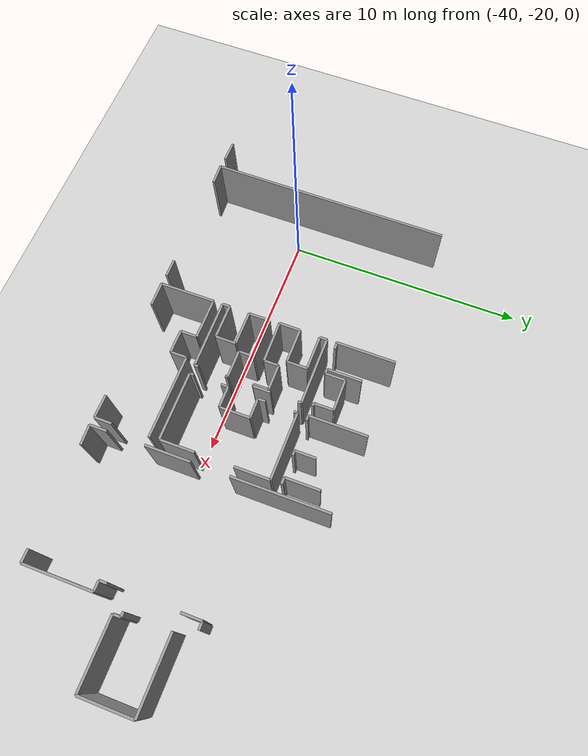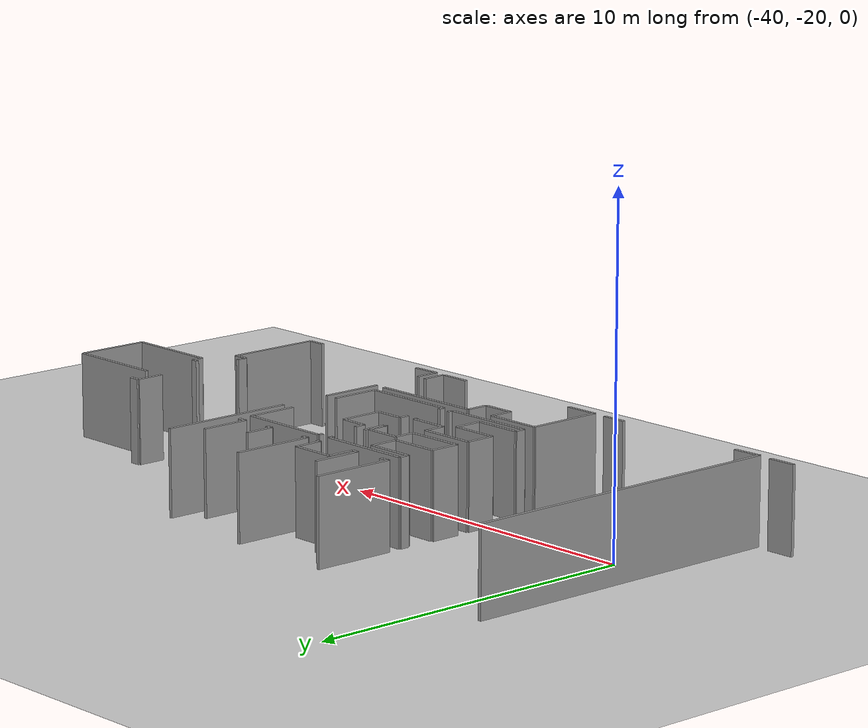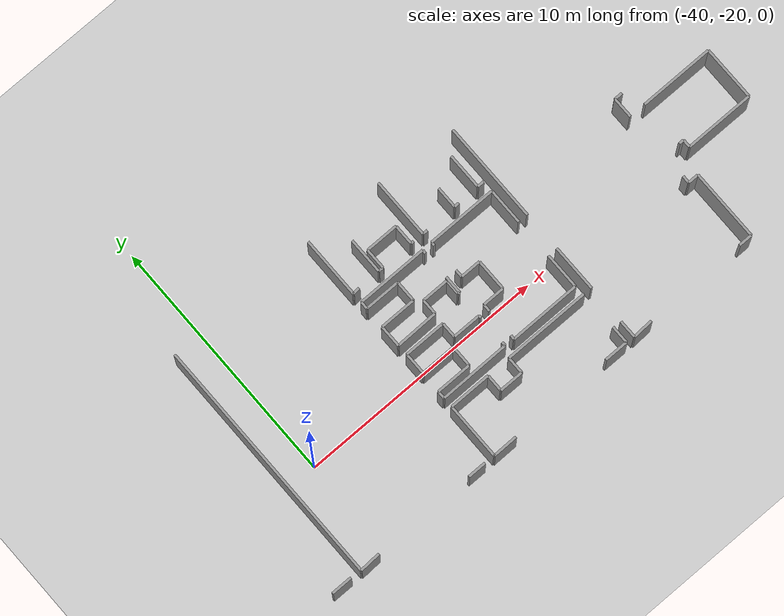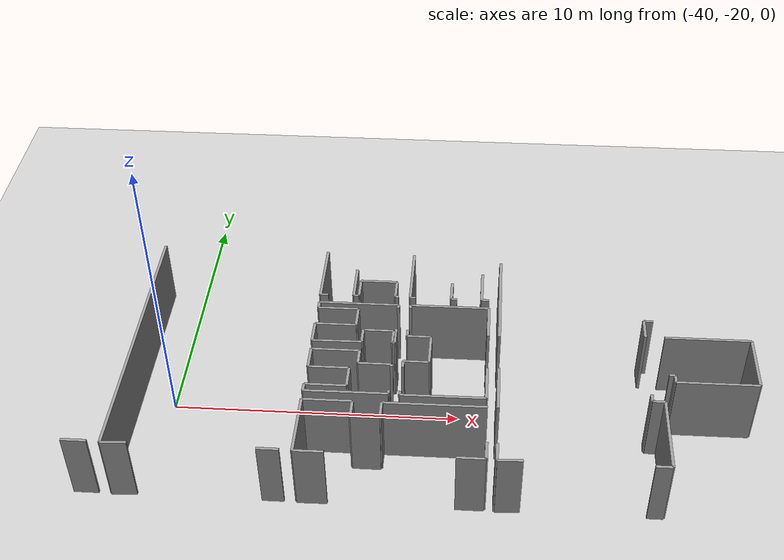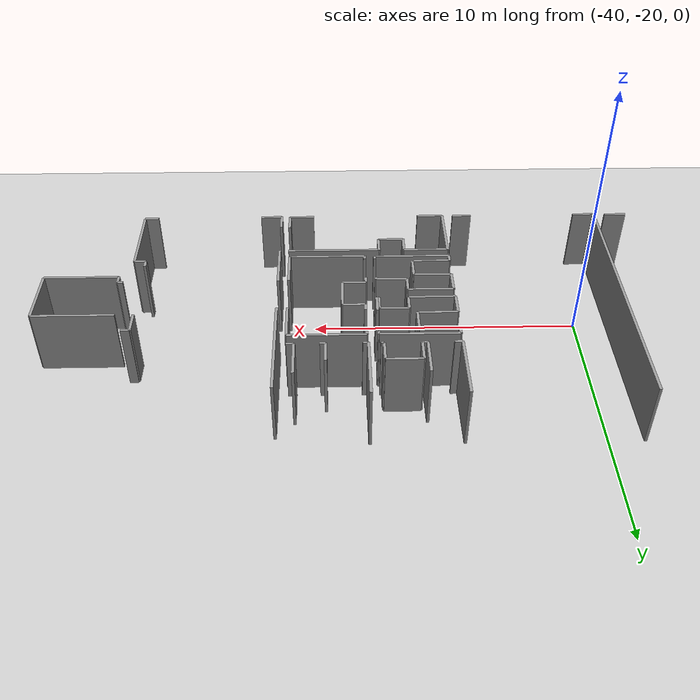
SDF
<sdf version="1.6">
 <world name="default">
  <model name="ground_plane">
   <static>1</static>
   <link name="link">
    <collision name="collision">
     <geometry><plane><normal>0 0 1</normal><size>100 100</size></plane></geometry>
     <surface><friction><ode><mu>100</mu><mu2>50</mu2></ode></friction></surface>
    </collision>
    <visual name="visual">
     <cast_shadows>0</cast_shadows>
     <geometry><plane><normal>0 0 1</normal><size>100 100</size></plane></geometry>
     <material>
      <script><uri>file://media/materials/scripts/gazebo.material</uri><name>Gazebo/Grey</name></script>
     </material>
    </visual>
   </link>
  </model>
  <model name="0510035341_A_40_1_103">
   <static>1</static>
   <link name="Wall_285">
    <collision name="Wall_285_Collision">
     <geometry><box><size>0.716145006666 0.1 2.5</size></box></geometry>
     <pose>0.358072503333 0 1.25 0 0 0</pose>
    </collision>
    <visual name="Wall_285_Visual">
     <pose>0.358072503333 0 1.25 0 0 0</pose>
     <geometry><box><size>0.716145006666 0.1 2.5</size></box></geometry>
     <material>
      <script><uri>file://media/materials/scripts/gazebo.material</uri><name>Gazebo/Grey</name></script>
      <ambient>1 1 1 1</ambient>
     </material>
    </visual>
    <pose>84.2300806298 -48.1396736715 0 0 0 1.57079632679</pose>
   </link>
   <link name="Wall_286">
    <collision name="Wall_286_Collision">
     <geometry><box><size>1.87315091105 0.1 2.5</size></box></geometry>
     <pose>0.936575455527 0 1.25 0 0 0</pose>
    </collision>
    <visual name="Wall_286_Visual">
     <pose>0.936575455527 0 1.25 0 0 0</pose>
     <geometry><box><size>1.87315091105 0.1 2.5</size></box></geometry>
     <material>
      <script><uri>file://media/materials/scripts/gazebo.material</uri><name>Gazebo/Grey</name></script>
      <ambient>1 1 1 1</ambient>
     </material>
    </visual>
    <pose>84.2300806298 -45.8599454003 0 0 0 1.57079632679</pose>
   </link>
   <link name="Wall_287">
    <collision name="Wall_287_Collision">
     <geometry><box><size>4.01447527141 0.1 2.5</size></box></geometry>
     <pose>2.00723763571 0 1.25 0 0 0</pose>
    </collision>
    <visual name="Wall_287_Visual">
     <pose>2.00723763571 0 1.25 0 0 0</pose>
     <geometry><box><size>4.01447527141 0.1 2.5</size></box></geometry>
     <material>
      <script><uri>file://media/materials/scripts/gazebo.material</uri><name>Gazebo/Grey</name></script>
      <ambient>1 1 1 1</ambient>
     </material>
    </visual>
    <pose>84.2300806298 -42.4148308044 0 0 0 1.57079632679</pose>
   </link>
   <link name="Wall_291">
    <collision name="Wall_291_Collision">
     <geometry><box><size>0.3248047743 0.1 2.5</size></box></geometry>
     <pose>0.16240238715 0 1.25 0 0 0</pose>
    </collision>
    <visual name="Wall_291_Visual">
     <pose>0.16240238715 0 1.25 0 0 0</pose>
     <geometry><box><size>0.3248047743 0.1 2.5</size></box></geometry>
     <material>
      <script><uri>file://media/materials/scripts/gazebo.material</uri><name>Gazebo/Grey</name></script>
      <ambient>1 1 1 1</ambient>
     </material>
    </visual>
    <pose>89.6123420735 -41.3040441877 0 0 0 3.14159265359</pose>
   </link>
   <link name="Wall_292">
    <collision name="Wall_292_Collision">
     <geometry><box><size>0.830423465177 0.1 2.5</size></box></geometry>
     <pose>0.415211732588 0 1.25 0 0 0</pose>
    </collision>
    <visual name="Wall_292_Visual">
     <pose>0.415211732588 0 1.25 0 0 0</pose>
     <geometry><box><size>0.830423465177 0.1 2.5</size></box></geometry>
     <material>
      <script><uri>file://media/materials/scripts/gazebo.material</uri><name>Gazebo/Grey</name></script>
      <ambient>1 1 1 1</ambient>
     </material>
    </visual>
    <pose>89.2875372992 -41.3040441877 0 0 0 -1.57079632679</pose>
   </link>
   <link name="Wall_293">
    <collision name="Wall_293_Collision">
     <geometry><box><size>0.307282077328 0.1 2.5</size></box></geometry>
     <pose>0.153641038664 0 1.25 0 0 0</pose>
    </collision>
    <visual name="Wall_293_Visual">
     <pose>0.153641038664 0 1.25 0 0 0</pose>
     <geometry><box><size>0.307282077328 0.1 2.5</size></box></geometry>
     <material>
      <script><uri>file://media/materials/scripts/gazebo.material</uri><name>Gazebo/Grey</name></script>
      <ambient>1 1 1 1</ambient>
     </material>
    </visual>
    <pose>89.2875372992 -44.9467335407 0 0 0 -1.57079632679</pose>
   </link>
   <link name="Wall_294">
    <collision name="Wall_294_Collision">
     <geometry><box><size>0.426893530569 0.1 2.5</size></box></geometry>
     <pose>0.213446765285 0 1.25 0 0 0</pose>
    </collision>
    <visual name="Wall_294_Visual">
     <pose>0.213446765285 0 1.25 0 0 0</pose>
     <geometry><box><size>0.426893530569 0.1 2.5</size></box></geometry>
     <material>
      <script><uri>file://media/materials/scripts/gazebo.material</uri><name>Gazebo/Grey</name></script>
      <ambient>1 1 1 1</ambient>
     </material>
    </visual>
    <pose>89.2875372992 -45.2540156181 0 0 0 0.0</pose>
   </link>
   <link name="Wall_295">
    <collision name="Wall_295_Collision">
     <geometry><box><size>2.84858104247 0.1 2.5</size></box></geometry>
     <pose>1.42429052124 0 1.25 0 0 0</pose>
    </collision>
    <visual name="Wall_295_Visual">
     <pose>1.42429052124 0 1.25 0 0 0</pose>
     <geometry><box><size>2.84858104247 0.1 2.5</size></box></geometry>
     <material>
      <script><uri>file://media/materials/scripts/gazebo.material</uri><name>Gazebo/Grey</name></script>
      <ambient>1 1 1 1</ambient>
     </material>
    </visual>
    <pose>89.7144308298 -45.2540156181 0 0 0 -1.57079632679</pose>
   </link>
   <link name="Wall_296">
    <collision name="Wall_296_Collision">
     <geometry><box><size>0.548282648721 0.1 2.5</size></box></geometry>
     <pose>0.27414132436 0 1.25 0 0 0</pose>
    </collision>
    <visual name="Wall_296_Visual">
     <pose>0.27414132436 0 1.25 0 0 0</pose>
     <geometry><box><size>0.548282648721 0.1 2.5</size></box></geometry>
     <material>
      <script><uri>file://media/materials/scripts/gazebo.material</uri><name>Gazebo/Grey</name></script>
      <ambient>1 1 1 1</ambient>
     </material>
    </visual>
    <pose>89.7144308298 -48.1025966605 0 0 0 3.14159265359</pose>
   </link>
   <link name="Wall_297">
    <collision name="Wall_297_Collision">
     <geometry><box><size>0.829728572647 0.1 2.5</size></box></geometry>
     <pose>0.414864286323 0 1.25 0 0 0</pose>
    </collision>
    <visual name="Wall_297_Visual">
     <pose>0.414864286323 0 1.25 0 0 0</pose>
     <geometry><box><size>0.829728572647 0.1 2.5</size></box></geometry>
     <material>
      <script><uri>file://media/materials/scripts/gazebo.material</uri><name>Gazebo/Grey</name></script>
      <ambient>1 1 1 1</ambient>
     </material>
    </visual>
    <pose>85.0589803822 -48.1025966605 0 0 0 -3.09689205798</pose>
   </link>
   <link name="Wall_298">
    <collision name="Wall_298_Collision">
     <geometry><box><size>0.202145895499 0.1 2.5</size></box></geometry>
     <pose>0.101072947749 0 1.25 0 0 0</pose>
    </collision>
    <visual name="Wall_298_Visual">
     <pose>0.101072947749 0 1.25 0 0 0</pose>
     <geometry><box><size>0.202145895499 0.1 2.5</size></box></geometry>
     <material>
      <script><uri>file://media/materials/scripts/gazebo.material</uri><name>Gazebo/Grey</name></script>
      <ambient>1 1 1 1</ambient>
     </material>
    </visual>
    <pose>90.1481810679 -43.9847628722 0 0 0 3.14159265359</pose>
   </link>
   <link name="Wall_299">
    <collision name="Wall_299_Collision">
     <geometry><box><size>2.98876261825 0.1 2.5</size></box></geometry>
     <pose>1.49438130912 0 1.25 0 0 0</pose>
    </collision>
    <visual name="Wall_299_Visual">
     <pose>1.49438130912 0 1.25 0 0 0</pose>
     <geometry><box><size>2.98876261825 0.1 2.5</size></box></geometry>
     <material>
      <script><uri>file://media/materials/scripts/gazebo.material</uri><name>Gazebo/Grey</name></script>
      <ambient>1 1 1 1</ambient>
     </material>
    </visual>
    <pose>89.9460351724 -42.1296425624 0 0 0 0.0</pose>
   </link>
   <link name="Wall_300">
    <collision name="Wall_300_Collision">
     <geometry><box><size>2.18017903625 0.1 2.5</size></box></geometry>
     <pose>1.09008951813 0 1.25 0 0 0</pose>
    </collision>
    <visual name="Wall_300_Visual">
     <pose>1.09008951813 0 1.25 0 0 0</pose>
     <geometry><box><size>2.18017903625 0.1 2.5</size></box></geometry>
     <material>
      <script><uri>file://media/materials/scripts/gazebo.material</uri><name>Gazebo/Grey</name></script>
      <ambient>1 1 1 1</ambient>
     </material>
    </visual>
    <pose>92.9347977906 -42.1296425624 0 0 0 -1.57079632679</pose>
   </link>
   <link name="Wall_301">
    <collision name="Wall_301_Collision">
     <geometry><box><size>2.78661672275 0.1 2.5</size></box></geometry>
     <pose>1.39330836137 0 1.25 0 0 0</pose>
    </collision>
    <visual name="Wall_301_Visual">
     <pose>1.39330836137 0 1.25 0 0 0</pose>
     <geometry><box><size>2.78661672275 0.1 2.5</size></box></geometry>
     <material>
      <script><uri>file://media/materials/scripts/gazebo.material</uri><name>Gazebo/Grey</name></script>
      <ambient>1 1 1 1</ambient>
     </material>
    </visual>
    <pose>92.9347977906 -44.3098215986 0 0 0 3.14159265359</pose>
   </link>
   <link name="Wall_302">
    <collision name="Wall_302_Collision">
     <geometry><box><size>0.32505872643 0.1 2.5</size></box></geometry>
     <pose>0.162529363215 0 1.25 0 0 0</pose>
    </collision>
    <visual name="Wall_302_Visual">
     <pose>0.162529363215 0 1.25 0 0 0</pose>
     <geometry><box><size>0.32505872643 0.1 2.5</size></box></geometry>
     <material>
      <script><uri>file://media/materials/scripts/gazebo.material</uri><name>Gazebo/Grey</name></script>
      <ambient>1 1 1 1</ambient>
     </material>
    </visual>
    <pose>90.1481810679 -44.3098215986 0 0 0 1.57079632679</pose>
   </link>
   <link name="Wall_303">
    <collision name="Wall_303_Collision">
     <geometry><box><size>2.44403529935 0.1 2.5</size></box></geometry>
     <pose>1.22201764967 0 1.25 0 0 0</pose>
    </collision>
    <visual name="Wall_303_Visual">
     <pose>1.22201764967 0 1.25 0 0 0</pose>
     <geometry><box><size>2.44403529935 0.1 2.5</size></box></geometry>
     <material>
      <script><uri>file://media/materials/scripts/gazebo.material</uri><name>Gazebo/Grey</name></script>
      <ambient>1 1 1 1</ambient>
     </material>
    </visual>
    <pose>77.7644593994 -40.5498063615 0 0 0 1.57079632679</pose>
   </link>
   <link name="Wall_307">
    <collision name="Wall_307_Collision">
     <geometry><box><size>0.118595644721 0.1 2.5</size></box></geometry>
     <pose>0.0592978223605 0 1.25 0 0 0</pose>
    </collision>
    <visual name="Wall_307_Visual">
     <pose>0.0592978223605 0 1.25 0 0 0</pose>
     <geometry><box><size>0.118595644721 0.1 2.5</size></box></geometry>
     <material>
      <script><uri>file://media/materials/scripts/gazebo.material</uri><name>Gazebo/Grey</name></script>
      <ambient>1 1 1 1</ambient>
     </material>
    </visual>
    <pose>80.5848517554 -40.513745159 0 0 0 3.14159265359</pose>
   </link>
   <link name="Wall_308">
    <collision name="Wall_308_Collision">
     <geometry><box><size>0.813662624595 0.1 2.5</size></box></geometry>
     <pose>0.406831312298 0 1.25 0 0 0</pose>
    </collision>
    <visual name="Wall_308_Visual">
     <pose>0.406831312298 0 1.25 0 0 0</pose>
     <geometry><box><size>0.813662624595 0.1 2.5</size></box></geometry>
     <material>
      <script><uri>file://media/materials/scripts/gazebo.material</uri><name>Gazebo/Grey</name></script>
      <ambient>1 1 1 1</ambient>
     </material>
    </visual>
    <pose>80.4662561107 -40.513745159 0 0 0 1.57079632679</pose>
   </link>
   <link name="Wall_309">
    <collision name="Wall_309_Collision">
     <geometry><box><size>1.31166275157 0.1 2.5</size></box></geometry>
     <pose>0.655831375786 0 1.25 0 0 0</pose>
    </collision>
    <visual name="Wall_309_Visual">
     <pose>0.655831375786 0 1.25 0 0 0</pose>
     <geometry><box><size>1.31166275157 0.1 2.5</size></box></geometry>
     <material>
      <script><uri>file://media/materials/scripts/gazebo.material</uri><name>Gazebo/Grey</name></script>
      <ambient>1 1 1 1</ambient>
     </material>
    </visual>
    <pose>80.4662561107 -39.7000825344 0 0 0 3.14159265359</pose>
   </link>
   <link name="Wall_310">
    <collision name="Wall_310_Collision">
     <geometry><box><size>0.821789092756 0.1 2.5</size></box></geometry>
     <pose>0.410894546378 0 1.25 0 0 0</pose>
    </collision>
    <visual name="Wall_310_Visual">
     <pose>0.410894546378 0 1.25 0 0 0</pose>
     <geometry><box><size>0.821789092756 0.1 2.5</size></box></geometry>
     <material>
      <script><uri>file://media/materials/scripts/gazebo.material</uri><name>Gazebo/Grey</name></script>
      <ambient>1 1 1 1</ambient>
     </material>
    </visual>
    <pose>79.1545933592 -39.7000825344 0 0 0 -1.57079632679</pose>
   </link>
   <link name="Wall_311">
    <collision name="Wall_311_Collision">
     <geometry><box><size>0.190972001778 0.1 2.5</size></box></geometry>
     <pose>0.0954860008888 0 1.25 0 0 0</pose>
    </collision>
    <visual name="Wall_311_Visual">
     <pose>0.0954860008888 0 1.25 0 0 0</pose>
     <geometry><box><size>0.190972001778 0.1 2.5</size></box></geometry>
     <material>
      <script><uri>file://media/materials/scripts/gazebo.material</uri><name>Gazebo/Grey</name></script>
      <ambient>1 1 1 1</ambient>
     </material>
    </visual>
    <pose>79.1545933592 -40.5218716272 0 0 0 3.14159265359</pose>
   </link>
   <link name="Wall_312">
    <collision name="Wall_312_Collision">
     <geometry><box><size>1.43609929528 0.1 2.5</size></box></geometry>
     <pose>0.718049647641 0 1.25 0 0 0</pose>
    </collision>
    <visual name="Wall_312_Visual">
     <pose>0.718049647641 0 1.25 0 0 0</pose>
     <geometry><box><size>1.43609929528 0.1 2.5</size></box></geometry>
     <material>
      <script><uri>file://media/materials/scripts/gazebo.material</uri><name>Gazebo/Grey</name></script>
      <ambient>1 1 1 1</ambient>
     </material>
    </visual>
    <pose>78.9636213574 -40.5218716272 0 0 0 1.57079632679</pose>
   </link>
   <link name="Wall_315">
    <collision name="Wall_315_Collision">
     <geometry><box><size>0.286617916354 0.1 2.5</size></box></geometry>
     <pose>0.143308958177 0 1.25 0 0 0</pose>
    </collision>
    <visual name="Wall_315_Visual">
     <pose>0.143308958177 0 1.25 0 0 0</pose>
     <geometry><box><size>0.286617916354 0.1 2.5</size></box></geometry>
     <material>
      <script><uri>file://media/materials/scripts/gazebo.material</uri><name>Gazebo/Grey</name></script>
      <ambient>1 1 1 1</ambient>
     </material>
    </visual>
    <pose>78.0504094978 -40.5302520475 0 0 0 -3.07331529127</pose>
   </link>
   <link name="Wall_316">
    <collision name="Wall_316_Collision">
     <geometry><box><size>2.41051361818 0.1 2.5</size></box></geometry>
     <pose>1.20525680909 0 1.25 0 0 0</pose>
    </collision>
    <visual name="Wall_316_Visual">
     <pose>1.20525680909 0 1.25 0 0 0</pose>
     <geometry><box><size>2.41051361818 0.1 2.5</size></box></geometry>
     <material>
      <script><uri>file://media/materials/scripts/gazebo.material</uri><name>Gazebo/Grey</name></script>
      <ambient>1 1 1 1</ambient>
     </material>
    </visual>
    <pose>81.0026030093 -40.5320297124 0 0 0 1.57079632679</pose>
   </link>
   <link name="Wall_320">
    <collision name="Wall_320_Collision">
     <geometry><box><size>0.267157640785 0.1 2.5</size></box></geometry>
     <pose>0.133578820392 0 1.25 0 0 0</pose>
    </collision>
    <visual name="Wall_320_Visual">
     <pose>0.133578820392 0 1.25 0 0 0</pose>
     <geometry><box><size>0.267157640785 0.1 2.5</size></box></geometry>
     <material>
      <script><uri>file://media/materials/scripts/gazebo.material</uri><name>Gazebo/Grey</name></script>
      <ambient>1 1 1 1</ambient>
     </material>
    </visual>
    <pose>83.8362008761 -40.5114595899 0 0 0 3.14159265359</pose>
   </link>
   <link name="Wall_321">
    <collision name="Wall_321_Collision">
     <geometry><box><size>1.4320360612 0.1 2.5</size></box></geometry>
     <pose>0.716018030601 0 1.25 0 0 0</pose>
    </collision>
    <visual name="Wall_321_Visual">
     <pose>0.716018030601 0 1.25 0 0 0</pose>
     <geometry><box><size>1.4320360612 0.1 2.5</size></box></geometry>
     <material>
      <script><uri>file://media/materials/scripts/gazebo.material</uri><name>Gazebo/Grey</name></script>
      <ambient>1 1 1 1</ambient>
     </material>
    </visual>
    <pose>83.5690432354 -40.5114595899 0 0 0 1.57079632679</pose>
   </link>
   <link name="Wall_324">
    <collision name="Wall_324_Collision">
     <geometry><box><size>0.200622182719 0.1 2.5</size></box></geometry>
     <pose>0.100311091359 0 1.25 0 0 0</pose>
    </collision>
    <visual name="Wall_324_Visual">
     <pose>0.100311091359 0 1.25 0 0 0</pose>
     <geometry><box><size>0.200622182719 0.1 2.5</size></box></geometry>
     <material>
      <script><uri>file://media/materials/scripts/gazebo.material</uri><name>Gazebo/Grey</name></script>
      <ambient>1 1 1 1</ambient>
     </material>
    </visual>
    <pose>82.6812265888 -40.5211097708 0 0 0 3.14159265359</pose>
   </link>
   <link name="Wall_325">
    <collision name="Wall_325_Collision">
     <geometry><box><size>0.859120055869 0.1 2.5</size></box></geometry>
     <pose>0.429560027935 0 1.25 0 0 0</pose>
    </collision>
    <visual name="Wall_325_Visual">
     <pose>0.429560027935 0 1.25 0 0 0</pose>
     <geometry><box><size>0.859120055869 0.1 2.5</size></box></geometry>
     <material>
      <script><uri>file://media/materials/scripts/gazebo.material</uri><name>Gazebo/Grey</name></script>
      <ambient>1 1 1 1</ambient>
     </material>
    </visual>
    <pose>82.4806044061 -40.5211097708 0 0 0 1.57079632679</pose>
   </link>
   <link name="Wall_328">
    <collision name="Wall_328_Collision">
     <geometry><box><size>0.19884857192 0.1 2.5</size></box></geometry>
     <pose>0.0994242859599 0 1.25 0 0 0</pose>
    </collision>
    <visual name="Wall_328_Visual">
     <pose>0.0994242859599 0 1.25 0 0 0</pose>
     <geometry><box><size>0.19884857192 0.1 2.5</size></box></geometry>
     <material>
      <script><uri>file://media/materials/scripts/gazebo.material</uri><name>Gazebo/Grey</name></script>
      <ambient>1 1 1 1</ambient>
     </material>
    </visual>
    <pose>81.2014475271 -40.5307599517 0 0 0 -3.13520704434</pose>
   </link>
   <link name="Wall_329">
    <collision name="Wall_329_Collision">
     <geometry><box><size>0.873595327281 0.1 2.5</size></box></geometry>
     <pose>0.43679766364 0 1.25 0 0 0</pose>
    </collision>
    <visual name="Wall_329_Visual">
     <pose>0.43679766364 0 1.25 0 0 0</pose>
     <geometry><box><size>0.873595327281 0.1 2.5</size></box></geometry>
     <material>
      <script><uri>file://media/materials/scripts/gazebo.material</uri><name>Gazebo/Grey</name></script>
      <ambient>1 1 1 1</ambient>
     </material>
    </visual>
    <pose>77.7606501175 -42.9742873468 0 0 0 1.57079632679</pose>
   </link>
   <link name="Wall_330">
    <collision name="Wall_330_Collision">
     <geometry><box><size>1.44371785918 0.1 2.5</size></box></geometry>
     <pose>0.721858929592 0 1.25 0 0 0</pose>
    </collision>
    <visual name="Wall_330_Visual">
     <pose>0.721858929592 0 1.25 0 0 0</pose>
     <geometry><box><size>1.44371785918 0.1 2.5</size></box></geometry>
     <material>
      <script><uri>file://media/materials/scripts/gazebo.material</uri><name>Gazebo/Grey</name></script>
      <ambient>1 1 1 1</ambient>
     </material>
    </visual>
    <pose>77.7606501175 -42.1006920196 0 0 0 0.0</pose>
   </link>
   <link name="Wall_331">
    <collision name="Wall_331_Collision">
     <geometry><box><size>0.844644784458 0.1 2.5</size></box></geometry>
     <pose>0.422322392229 0 1.25 0 0 0</pose>
    </collision>
    <visual name="Wall_331_Visual">
     <pose>0.422322392229 0 1.25 0 0 0</pose>
     <geometry><box><size>0.844644784458 0.1 2.5</size></box></geometry>
     <material>
      <script><uri>file://media/materials/scripts/gazebo.material</uri><name>Gazebo/Grey</name></script>
      <ambient>1 1 1 1</ambient>
     </material>
    </visual>
    <pose>79.2043679766 -42.1006920196 0 0 0 1.57079632679</pose>
   </link>
   <link name="Wall_332">
    <collision name="Wall_332_Collision">
     <geometry><box><size>1.42213192813 0.1 2.5</size></box></geometry>
     <pose>0.711065964066 0 1.25 0 0 0</pose>
    </collision>
    <visual name="Wall_332_Visual">
     <pose>0.711065964066 0 1.25 0 0 0</pose>
     <geometry><box><size>1.42213192813 0.1 2.5</size></box></geometry>
     <material>
      <script><uri>file://media/materials/scripts/gazebo.material</uri><name>Gazebo/Grey</name></script>
      <ambient>1 1 1 1</ambient>
     </material>
    </visual>
    <pose>79.2043679766 -41.2560472351 0 0 0 3.14159265359</pose>
   </link>
   <link name="Wall_333">
    <collision name="Wall_333_Collision">
     <geometry><box><size>0.295854231477 0.1 2.5</size></box></geometry>
     <pose>0.147927115739 0 1.25 0 0 0</pose>
    </collision>
    <visual name="Wall_333_Visual">
     <pose>0.147927115739 0 1.25 0 0 0</pose>
     <geometry><box><size>0.295854231477 0.1 2.5</size></box></geometry>
     <material>
      <script><uri>file://media/materials/scripts/gazebo.material</uri><name>Gazebo/Grey</name></script>
      <ambient>1 1 1 1</ambient>
     </material>
    </visual>
    <pose>77.7822360485 -41.2560472351 0 0 0 1.57079632679</pose>
   </link>
   <link name="Wall_334">
    <collision name="Wall_334_Collision">
     <geometry><box><size>2.83715319662 0.1 2.5</size></box></geometry>
     <pose>1.41857659831 0 1.25 0 0 0</pose>
    </collision>
    <visual name="Wall_334_Visual">
     <pose>1.41857659831 0 1.25 0 0 0</pose>
     <geometry><box><size>2.83715319662 0.1 2.5</size></box></geometry>
     <material>
      <script><uri>file://media/materials/scripts/gazebo.material</uri><name>Gazebo/Grey</name></script>
      <ambient>1 1 1 1</ambient>
     </material>
    </visual>
    <pose>77.7822360485 -40.9601930036 0 0 0 0.0</pose>
   </link>
   <link name="Wall_335">
    <collision name="Wall_335_Collision">
     <geometry><box><size>0.144244809853 0.1 2.5</size></box></geometry>
     <pose>0.0721224049267 0 1.25 0 0 0</pose>
    </collision>
    <visual name="Wall_335_Visual">
     <pose>0.0721224049267 0 1.25 0 0 0</pose>
     <geometry><box><size>0.144244809853 0.1 2.5</size></box></geometry>
     <material>
      <script><uri>file://media/materials/scripts/gazebo.material</uri><name>Gazebo/Grey</name></script>
      <ambient>1 1 1 1</ambient>
     </material>
    </visual>
    <pose>80.6193892451 -40.9601930036 0 0 0 -1.57079632679</pose>
   </link>
   <link name="Wall_336">
    <collision name="Wall_336_Collision">
     <geometry><box><size>0.715129198146 0.1 2.5</size></box></geometry>
     <pose>0.357564599073 0 1.25 0 0 0</pose>
    </collision>
    <visual name="Wall_336_Visual">
     <pose>0.357564599073 0 1.25 0 0 0</pose>
     <geometry><box><size>0.715129198146 0.1 2.5</size></box></geometry>
     <material>
      <script><uri>file://media/materials/scripts/gazebo.material</uri><name>Gazebo/Grey</name></script>
      <ambient>1 1 1 1</ambient>
     </material>
    </visual>
    <pose>80.6193892451 -42.2281759888 0 0 0 -1.57079632679</pose>
   </link>
   <link name="Wall_337">
    <collision name="Wall_337_Collision">
     <geometry><box><size>0.0733921655768 0.1 2.5</size></box></geometry>
     <pose>0.0366960827884 0 1.25 0 0 0</pose>
    </collision>
    <visual name="Wall_337_Visual">
     <pose>0.0366960827884 0 1.25 0 0 0</pose>
     <geometry><box><size>0.0733921655768 0.1 2.5</size></box></geometry>
     <material>
      <script><uri>file://media/materials/scripts/gazebo.material</uri><name>Gazebo/Grey</name></script>
      <ambient>1 1 1 1</ambient>
     </material>
    </visual>
    <pose>80.6193892451 -42.943305187 0 0 0 3.14159265359</pose>
   </link>
   <link name="Wall_338">
    <collision name="Wall_338_Collision">
     <geometry><box><size>0.605929782236 0.1 2.5</size></box></geometry>
     <pose>0.302964891118 0 1.25 0 0 0</pose>
    </collision>
    <visual name="Wall_338_Visual">
     <pose>0.302964891118 0 1.25 0 0 0</pose>
     <geometry><box><size>0.605929782236 0.1 2.5</size></box></geometry>
     <material>
      <script><uri>file://media/materials/scripts/gazebo.material</uri><name>Gazebo/Grey</name></script>
      <ambient>1 1 1 1</ambient>
     </material>
    </visual>
    <pose>80.5459970796 -42.943305187 0 0 0 1.57079632679</pose>
   </link>
   <link name="Wall_339">
    <collision name="Wall_339_Collision">
     <geometry><box><size>1.06990032379 0.1 2.5</size></box></geometry>
     <pose>0.534950161894 0 1.25 0 0 0</pose>
    </collision>
    <visual name="Wall_339_Visual">
     <pose>0.534950161894 0 1.25 0 0 0</pose>
     <geometry><box><size>1.06990032379 0.1 2.5</size></box></geometry>
     <material>
      <script><uri>file://media/materials/scripts/gazebo.material</uri><name>Gazebo/Grey</name></script>
      <ambient>1 1 1 1</ambient>
     </material>
    </visual>
    <pose>80.5459970796 -42.3373754047 0 0 0 3.14159265359</pose>
   </link>
   <link name="Wall_340">
    <collision name="Wall_340_Collision">
     <geometry><box><size>0.611516729097 0.1 2.5</size></box></geometry>
     <pose>0.305758364548 0 1.25 0 0 0</pose>
    </collision>
    <visual name="Wall_340_Visual">
     <pose>0.305758364548 0 1.25 0 0 0</pose>
     <geometry><box><size>0.611516729097 0.1 2.5</size></box></geometry>
     <material>
      <script><uri>file://media/materials/scripts/gazebo.material</uri><name>Gazebo/Grey</name></script>
      <ambient>1 1 1 1</ambient>
     </material>
    </visual>
    <pose>79.4760967558 -42.3373754047 0 0 0 -1.57079632679</pose>
   </link>
   <link name="Wall_341">
    <collision name="Wall_341_Collision">
     <geometry><box><size>1.71563460146 0.1 2.5</size></box></geometry>
     <pose>0.85781730073 0 1.25 0 0 0</pose>
    </collision>
    <visual name="Wall_341_Visual">
     <pose>0.85781730073 0 1.25 0 0 0</pose>
     <geometry><box><size>1.71563460146 0.1 2.5</size></box></geometry>
     <material>
      <script><uri>file://media/materials/scripts/gazebo.material</uri><name>Gazebo/Grey</name></script>
      <ambient>1 1 1 1</ambient>
     </material>
    </visual>
    <pose>79.4760967558 -42.9488921338 0 0 0 -3.12678988589</pose>
   </link>
   <link name="Wall_342">
    <collision name="Wall_342_Collision">
     <geometry><box><size>0.307028125198 0.1 2.5</size></box></geometry>
     <pose>0.153514062599 0 1.25 0 0 0</pose>
    </collision>
    <visual name="Wall_342_Visual">
     <pose>0.153514062599 0 1.25 0 0 0</pose>
     <geometry><box><size>0.307028125198 0.1 2.5</size></box></geometry>
     <material>
      <script><uri>file://media/materials/scripts/gazebo.material</uri><name>Gazebo/Grey</name></script>
      <ambient>1 1 1 1</ambient>
     </material>
    </visual>
    <pose>77.7598882611 -45.4282267793 0 0 0 1.57079632679</pose>
   </link>
   <link name="Wall_343">
    <collision name="Wall_343_Collision">
     <geometry><box><size>1.41959240683 0.1 2.5</size></box></geometry>
     <pose>0.709796203416 0 1.25 0 0 0</pose>
    </collision>
    <visual name="Wall_343_Visual">
     <pose>0.709796203416 0 1.25 0 0 0</pose>
     <geometry><box><size>1.41959240683 0.1 2.5</size></box></geometry>
     <material>
      <script><uri>file://media/materials/scripts/gazebo.material</uri><name>Gazebo/Grey</name></script>
      <ambient>1 1 1 1</ambient>
     </material>
    </visual>
    <pose>77.7598882611 -45.1211986541 0 0 0 0.0</pose>
   </link>
   <link name="Wall_344">
    <collision name="Wall_344_Collision">
     <geometry><box><size>0.846930353628 0.1 2.5</size></box></geometry>
     <pose>0.423465176814 0 1.25 0 0 0</pose>
    </collision>
    <visual name="Wall_344_Visual">
     <pose>0.423465176814 0 1.25 0 0 0</pose>
     <geometry><box><size>0.846930353628 0.1 2.5</size></box></geometry>
     <material>
      <script><uri>file://media/materials/scripts/gazebo.material</uri><name>Gazebo/Grey</name></script>
      <ambient>1 1 1 1</ambient>
     </material>
    </visual>
    <pose>79.1794806679 -45.1211986541 0 0 0 1.57079632679</pose>
   </link>
   <link name="Wall_345">
    <collision name="Wall_345_Collision">
     <geometry><box><size>1.39470509809 0.1 2.5</size></box></geometry>
     <pose>0.697352549045 0 1.25 0 0 0</pose>
    </collision>
    <visual name="Wall_345_Visual">
     <pose>0.697352549045 0 1.25 0 0 0</pose>
     <geometry><box><size>1.39470509809 0.1 2.5</size></box></geometry>
     <material>
      <script><uri>file://media/materials/scripts/gazebo.material</uri><name>Gazebo/Grey</name></script>
      <ambient>1 1 1 1</ambient>
     </material>
    </visual>
    <pose>79.1794806679 -44.2742683004 0 0 0 3.14159265359</pose>
   </link>
   <link name="Wall_346">
    <collision name="Wall_346_Collision">
     <geometry><box><size>0.871563710241 0.1 2.5</size></box></geometry>
     <pose>0.43578185512 0 1.25 0 0 0</pose>
    </collision>
    <visual name="Wall_346_Visual">
     <pose>0.43578185512 0 1.25 0 0 0</pose>
     <geometry><box><size>0.871563710241 0.1 2.5</size></box></geometry>
     <material>
      <script><uri>file://media/materials/scripts/gazebo.material</uri><name>Gazebo/Grey</name></script>
      <ambient>1 1 1 1</ambient>
     </material>
    </visual>
    <pose>77.7847755698 -44.2742683004 0 0 0 1.57079632679</pose>
   </link>
   <link name="Wall_347">
    <collision name="Wall_347_Collision">
     <geometry><box><size>1.66871944638 0.1 2.5</size></box></geometry>
     <pose>0.834359723192 0 1.25 0 0 0</pose>
    </collision>
    <visual name="Wall_347_Visual">
     <pose>0.834359723192 0 1.25 0 0 0</pose>
     <geometry><box><size>1.66871944638 0.1 2.5</size></box></geometry>
     <material>
      <script><uri>file://media/materials/scripts/gazebo.material</uri><name>Gazebo/Grey</name></script>
      <ambient>1 1 1 1</ambient>
     </material>
    </visual>
    <pose>77.7847755698 -43.4027045902 0 0 0 0.0</pose>
   </link>
   <link name="Wall_348">
    <collision name="Wall_348_Collision">
     <geometry><box><size>0.614310202527 0.1 2.5</size></box></geometry>
     <pose>0.307155101263 0 1.25 0 0 0</pose>
    </collision>
    <visual name="Wall_348_Visual">
     <pose>0.307155101263 0 1.25 0 0 0</pose>
     <geometry><box><size>0.614310202527 0.1 2.5</size></box></geometry>
     <material>
      <script><uri>file://media/materials/scripts/gazebo.material</uri><name>Gazebo/Grey</name></script>
      <ambient>1 1 1 1</ambient>
     </material>
    </visual>
    <pose>79.4534950162 -43.4027045902 0 0 0 -1.57079632679</pose>
   </link>
   <link name="Wall_349">
    <collision name="Wall_349_Collision">
     <geometry><box><size>1.14557805854 0.1 2.5</size></box></geometry>
     <pose>0.572789029268 0 1.25 0 0 0</pose>
    </collision>
    <visual name="Wall_349_Visual">
     <pose>0.572789029268 0 1.25 0 0 0</pose>
     <geometry><box><size>1.14557805854 0.1 2.5</size></box></geometry>
     <material>
      <script><uri>file://media/materials/scripts/gazebo.material</uri><name>Gazebo/Grey</name></script>
      <ambient>1 1 1 1</ambient>
     </material>
    </visual>
    <pose>79.4534950162 -44.0170147927 0 0 0 0.0</pose>
   </link>
   <link name="Wall_350">
    <collision name="Wall_350_Collision">
     <geometry><box><size>0.0995492349692 0.1 2.5</size></box></geometry>
     <pose>0.0497746174846 0 1.25 0 0 0</pose>
    </collision>
    <visual name="Wall_350_Visual">
     <pose>0.0497746174846 0 1.25 0 0 0</pose>
     <geometry><box><size>0.0995492349692 0.1 2.5</size></box></geometry>
     <material>
      <script><uri>file://media/materials/scripts/gazebo.material</uri><name>Gazebo/Grey</name></script>
      <ambient>1 1 1 1</ambient>
     </material>
    </visual>
    <pose>80.5990730747 -44.0170147927 0 0 0 -1.57079632679</pose>
   </link>
   <link name="Wall_351">
    <collision name="Wall_351_Collision">
     <geometry><box><size>0.158974033395 0.1 2.5</size></box></geometry>
     <pose>0.0794870166974 0 1.25 0 0 0</pose>
    </collision>
    <visual name="Wall_351_Visual">
     <pose>0.0794870166974 0 1.25 0 0 0</pose>
     <geometry><box><size>0.158974033395 0.1 2.5</size></box></geometry>
     <material>
      <script><uri>file://media/materials/scripts/gazebo.material</uri><name>Gazebo/Grey</name></script>
      <ambient>1 1 1 1</ambient>
     </material>
    </visual>
    <pose>80.5990730747 -45.2552853787 0 0 0 -1.57079632679</pose>
   </link>
   <link name="Wall_352">
    <collision name="Wall_352_Collision">
     <geometry><box><size>2.83921916968 0.1 2.5</size></box></geometry>
     <pose>1.41960958484 0 1.25 0 0 0</pose>
    </collision>
    <visual name="Wall_352_Visual">
     <pose>1.41960958484 0 1.25 0 0 0</pose>
     <geometry><box><size>2.83921916968 0.1 2.5</size></box></geometry>
     <material>
      <script><uri>file://media/materials/scripts/gazebo.material</uri><name>Gazebo/Grey</name></script>
      <ambient>1 1 1 1</ambient>
     </material>
    </visual>
    <pose>80.5990730747 -45.4142594121 0 0 0 -3.13667319417</pose>
   </link>
   <link name="Wall_353">
    <collision name="Wall_353_Collision">
     <geometry><box><size>0.171671639896 0.1 2.5</size></box></geometry>
     <pose>0.0858358199479 0 1.25 0 0 0</pose>
    </collision>
    <visual name="Wall_353_Visual">
     <pose>0.0858358199479 0 1.25 0 0 0</pose>
     <geometry><box><size>0.171671639896 0.1 2.5</size></box></geometry>
     <material>
      <script><uri>file://media/materials/scripts/gazebo.material</uri><name>Gazebo/Grey</name></script>
      <ambient>1 1 1 1</ambient>
     </material>
    </visual>
    <pose>80.9817789347 -45.447273189 0 0 0 1.57079632679</pose>
   </link>
   <link name="Wall_354">
    <collision name="Wall_354_Collision">
     <geometry><box><size>0.298901657038 0.1 2.5</size></box></geometry>
     <pose>0.149450828519 0 1.25 0 0 0</pose>
    </collision>
    <visual name="Wall_354_Visual">
     <pose>0.149450828519 0 1.25 0 0 0</pose>
     <geometry><box><size>0.298901657038 0.1 2.5</size></box></geometry>
     <material>
      <script><uri>file://media/materials/scripts/gazebo.material</uri><name>Gazebo/Grey</name></script>
      <ambient>1 1 1 1</ambient>
     </material>
    </visual>
    <pose>80.9817789347 -44.1333248683 0 0 0 1.57079632679</pose>
   </link>
   <link name="Wall_355">
    <collision name="Wall_355_Collision">
     <geometry><box><size>0.879182274141 0.1 2.5</size></box></geometry>
     <pose>0.439591137071 0 1.25 0 0 0</pose>
    </collision>
    <visual name="Wall_355_Visual">
     <pose>0.439591137071 0 1.25 0 0 0</pose>
     <geometry><box><size>0.879182274141 0.1 2.5</size></box></geometry>
     <material>
      <script><uri>file://media/materials/scripts/gazebo.material</uri><name>Gazebo/Grey</name></script>
      <ambient>1 1 1 1</ambient>
     </material>
    </visual>
    <pose>80.9817789347 -43.8344232112 0 0 0 0.0</pose>
   </link>
   <link name="Wall_356">
    <collision name="Wall_356_Collision">
     <geometry><box><size>1.26188813409 0.1 2.5</size></box></geometry>
     <pose>0.630944067043 0 1.25 0 0 0</pose>
    </collision>
    <visual name="Wall_356_Visual">
     <pose>0.630944067043 0 1.25 0 0 0</pose>
     <geometry><box><size>1.26188813409 0.1 2.5</size></box></geometry>
     <material>
      <script><uri>file://media/materials/scripts/gazebo.material</uri><name>Gazebo/Grey</name></script>
      <ambient>1 1 1 1</ambient>
     </material>
    </visual>
    <pose>81.8609612088 -43.8344232112 0 0 0 1.57079632679</pose>
   </link>
   <link name="Wall_357">
    <collision name="Wall_357_Collision">
     <geometry><box><size>0.822043044886 0.1 2.5</size></box></geometry>
     <pose>0.411021522443 0 1.25 0 0 0</pose>
    </collision>
    <visual name="Wall_357_Visual">
     <pose>0.411021522443 0 1.25 0 0 0</pose>
     <geometry><box><size>0.822043044886 0.1 2.5</size></box></geometry>
     <material>
      <script><uri>file://media/materials/scripts/gazebo.material</uri><name>Gazebo/Grey</name></script>
      <ambient>1 1 1 1</ambient>
     </material>
    </visual>
    <pose>81.8609612088 -42.5725350771 0 0 0 3.14159265359</pose>
   </link>
   <link name="Wall_358">
    <collision name="Wall_358_Collision">
     <geometry><box><size>0.307282077328 0.1 2.5</size></box></geometry>
     <pose>0.153641038664 0 1.25 0 0 0</pose>
    </collision>
    <visual name="Wall_358_Visual">
     <pose>0.153641038664 0 1.25 0 0 0</pose>
     <geometry><box><size>0.307282077328 0.1 2.5</size></box></geometry>
     <material>
      <script><uri>file://media/materials/scripts/gazebo.material</uri><name>Gazebo/Grey</name></script>
      <ambient>1 1 1 1</ambient>
     </material>
    </visual>
    <pose>81.0389181639 -42.5725350771 0 0 0 1.57079632679</pose>
   </link>
   <link name="Wall_359">
    <collision name="Wall_359_Collision">
     <geometry><box><size>0.151609421624 0.1 2.5</size></box></geometry>
     <pose>0.075804710812 0 1.25 0 0 0</pose>
    </collision>
    <visual name="Wall_359_Visual">
     <pose>0.075804710812 0 1.25 0 0 0</pose>
     <geometry><box><size>0.151609421624 0.1 2.5</size></box></geometry>
     <material>
      <script><uri>file://media/materials/scripts/gazebo.material</uri><name>Gazebo/Grey</name></script>
      <ambient>1 1 1 1</ambient>
     </material>
    </visual>
    <pose>81.0389181639 -41.1044378135 0 0 0 1.57079632679</pose>
   </link>
   <link name="Wall_360">
    <collision name="Wall_360_Collision">
     <geometry><box><size>2.80007618564 0.1 2.5</size></box></geometry>
     <pose>1.40003809282 0 1.25 0 0 0</pose>
    </collision>
    <visual name="Wall_360_Visual">
     <pose>1.40003809282 0 1.25 0 0 0</pose>
     <geometry><box><size>2.80007618564 0.1 2.5</size></box></geometry>
     <material>
      <script><uri>file://media/materials/scripts/gazebo.material</uri><name>Gazebo/Grey</name></script>
      <ambient>1 1 1 1</ambient>
     </material>
    </visual>
    <pose>81.0389181639 -40.9528283918 0 0 0 0.0</pose>
   </link>
   <link name="Wall_361">
    <collision name="Wall_361_Collision">
     <geometry><box><size>1.45819313059 0.1 2.5</size></box></geometry>
     <pose>0.729096565297 0 1.25 0 0 0</pose>
    </collision>
    <visual name="Wall_361_Visual">
     <pose>0.729096565297 0 1.25 0 0 0</pose>
     <geometry><box><size>1.45819313059 0.1 2.5</size></box></geometry>
     <material>
      <script><uri>file://media/materials/scripts/gazebo.material</uri><name>Gazebo/Grey</name></script>
      <ambient>1 1 1 1</ambient>
     </material>
    </visual>
    <pose>83.8389943496 -40.9528283918 0 0 0 -1.57079632679</pose>
   </link>
   <link name="Wall_362">
    <collision name="Wall_362_Collision">
     <geometry><box><size>1.44168624214 0.1 2.5</size></box></geometry>
     <pose>0.720843121072 0 1.25 0 0 0</pose>
    </collision>
    <visual name="Wall_362_Visual">
     <pose>0.720843121072 0 1.25 0 0 0</pose>
     <geometry><box><size>1.44168624214 0.1 2.5</size></box></geometry>
     <material>
      <script><uri>file://media/materials/scripts/gazebo.material</uri><name>Gazebo/Grey</name></script>
      <ambient>1 1 1 1</ambient>
     </material>
    </visual>
    <pose>83.8389943496 -43.996190718 0 0 0 -1.57079632679</pose>
   </link>
   <link name="Wall_363">
    <collision name="Wall_363_Collision">
     <geometry><box><size>2.85723086506 0.1 2.5</size></box></geometry>
     <pose>1.42861543253 0 1.25 0 0 0</pose>
    </collision>
    <visual name="Wall_363_Visual">
     <pose>1.42861543253 0 1.25 0 0 0</pose>
     <geometry><box><size>2.85723086506 0.1 2.5</size></box></geometry>
     <material>
      <script><uri>file://media/materials/scripts/gazebo.material</uri><name>Gazebo/Grey</name></script>
      <ambient>1 1 1 1</ambient>
     </material>
    </visual>
    <pose>83.8389943496 -45.4378769602 0 0 0 -3.13830406888</pose>
   </link>
   <link name="Wall_364">
    <collision name="Wall_364_Collision">
     <geometry><box><size>2.28175988826 0.1 2.5</size></box></geometry>
     <pose>1.14087994413 0 1.25 0 0 0</pose>
    </collision>
    <visual name="Wall_364_Visual">
     <pose>1.14087994413 0 1.25 0 0 0</pose>
     <geometry><box><size>2.28175988826 0.1 2.5</size></box></geometry>
     <material>
      <script><uri>file://media/materials/scripts/gazebo.material</uri><name>Gazebo/Grey</name></script>
      <ambient>1 1 1 1</ambient>
     </material>
    </visual>
    <pose>77.7644593994 -48.1109770808 0 0 0 1.57079632679</pose>
   </link>
   <link name="Wall_365">
    <collision name="Wall_365_Collision">
     <geometry><box><size>1.68014729224 0.1 2.5</size></box></geometry>
     <pose>0.840073646118 0 1.25 0 0 0</pose>
    </collision>
    <visual name="Wall_365_Visual">
     <pose>0.840073646118 0 1.25 0 0 0</pose>
     <geometry><box><size>1.68014729224 0.1 2.5</size></box></geometry>
     <material>
      <script><uri>file://media/materials/scripts/gazebo.material</uri><name>Gazebo/Grey</name></script>
      <ambient>1 1 1 1</ambient>
     </material>
    </visual>
    <pose>77.7644593994 -45.8292171926 0 0 0 0.0</pose>
   </link>
   <link name="Wall_366">
    <collision name="Wall_366_Collision">
     <geometry><box><size>0.687448415974 0.1 2.5</size></box></geometry>
     <pose>0.343724207987 0 1.25 0 0 0</pose>
    </collision>
    <visual name="Wall_366_Visual">
     <pose>0.343724207987 0 1.25 0 0 0</pose>
     <geometry><box><size>0.687448415974 0.1 2.5</size></box></geometry>
     <material>
      <script><uri>file://media/materials/scripts/gazebo.material</uri><name>Gazebo/Grey</name></script>
      <ambient>1 1 1 1</ambient>
     </material>
    </visual>
    <pose>79.4446066916 -45.8292171926 0 0 0 -1.57079632679</pose>
   </link>
   <link name="Wall_367">
    <collision name="Wall_367_Collision">
     <geometry><box><size>0.964256237699 0.1 2.5</size></box></geometry>
     <pose>0.48212811885 0 1.25 0 0 0</pose>
    </collision>
    <visual name="Wall_367_Visual">
     <pose>0.48212811885 0 1.25 0 0 0</pose>
     <geometry><box><size>0.964256237699 0.1 2.5</size></box></geometry>
     <material>
      <script><uri>file://media/materials/scripts/gazebo.material</uri><name>Gazebo/Grey</name></script>
      <ambient>1 1 1 1</ambient>
     </material>
    </visual>
    <pose>79.4446066916 -46.5166656085 0 0 0 0.0</pose>
   </link>
   <link name="Wall_368">
    <collision name="Wall_368_Collision">
     <geometry><box><size>0.677798235033 0.1 2.5</size></box></geometry>
     <pose>0.338899117516 0 1.25 0 0 0</pose>
    </collision>
    <visual name="Wall_368_Visual">
     <pose>0.338899117516 0 1.25 0 0 0</pose>
     <geometry><box><size>0.677798235033 0.1 2.5</size></box></geometry>
     <material>
      <script><uri>file://media/materials/scripts/gazebo.material</uri><name>Gazebo/Grey</name></script>
      <ambient>1 1 1 1</ambient>
     </material>
    </visual>
    <pose>80.4088629293 -46.5166656085 0 0 0 1.57079632679</pose>
   </link>
   <link name="Wall_369">
    <collision name="Wall_369_Collision">
     <geometry><box><size>3.48473112818 0.1 2.5</size></box></geometry>
     <pose>1.74236556409 0 1.25 0 0 0</pose>
    </collision>
    <visual name="Wall_369_Visual">
     <pose>1.74236556409 0 1.25 0 0 0</pose>
     <geometry><box><size>3.48473112818 0.1 2.5</size></box></geometry>
     <material>
      <script><uri>file://media/materials/scripts/gazebo.material</uri><name>Gazebo/Grey</name></script>
      <ambient>1 1 1 1</ambient>
     </material>
    </visual>
    <pose>80.4088629293 -45.8388673735 0 0 0 0.0</pose>
   </link>
   <link name="Wall_370">
    <collision name="Wall_370_Collision">
     <geometry><box><size>0.715891054536 0.1 2.5</size></box></geometry>
     <pose>0.357945527268 0 1.25 0 0 0</pose>
    </collision>
    <visual name="Wall_370_Visual">
     <pose>0.357945527268 0 1.25 0 0 0</pose>
     <geometry><box><size>0.715891054536 0.1 2.5</size></box></geometry>
     <material>
      <script><uri>file://media/materials/scripts/gazebo.material</uri><name>Gazebo/Grey</name></script>
      <ambient>1 1 1 1</ambient>
     </material>
    </visual>
    <pose>83.8935940575 -47.3854358453 0 0 0 -1.57079632679</pose>
   </link>
   <link name="Wall_371">
    <collision name="Wall_371_Collision">
     <geometry><box><size>0.956383721668 0.1 2.5</size></box></geometry>
     <pose>0.478191860834 0 1.25 0 0 0</pose>
    </collision>
    <visual name="Wall_371_Visual">
     <pose>0.478191860834 0 1.25 0 0 0</pose>
     <geometry><box><size>0.956383721668 0.1 2.5</size></box></geometry>
     <material>
      <script><uri>file://media/materials/scripts/gazebo.material</uri><name>Gazebo/Grey</name></script>
      <ambient>1 1 1 1</ambient>
     </material>
    </visual>
    <pose>83.8935940575 -48.1013268999 0 0 0 3.14159265359</pose>
   </link>
   <link name="Wall_372">
    <collision name="Wall_372_Collision">
     <geometry><box><size>1.0056967352 0.1 2.5</size></box></geometry>
     <pose>0.5028483676 0 1.25 0 0 0</pose>
    </collision>
    <visual name="Wall_372_Visual">
     <pose>0.5028483676 0 1.25 0 0 0</pose>
     <geometry><box><size>1.0056967352 0.1 2.5</size></box></geometry>
     <material>
      <script><uri>file://media/materials/scripts/gazebo.material</uri><name>Gazebo/Grey</name></script>
      <ambient>1 1 1 1</ambient>
     </material>
    </visual>
    <pose>78.7701098343 -48.1013268999 0 0 0 -3.13199698852</pose>
   </link>
   <link name="Wall_373">
    <collision name="Wall_373_Collision">
     <geometry><box><size>10.027299854 0.1 2.5</size></box></geometry>
     <pose>5.01364992699 0 1.25 0 0 0</pose>
    </collision>
    <visual name="Wall_373_Visual">
     <pose>5.01364992699 0 1.25 0 0 0</pose>
     <geometry><box><size>10.027299854 0.1 2.5</size></box></geometry>
     <material>
      <script><uri>file://media/materials/scripts/gazebo.material</uri><name>Gazebo/Grey</name></script>
      <ambient>1 1 1 1</ambient>
     </material>
    </visual>
    <pose>71.6150085709 -48.1259602565 0 0 0 1.57079632679</pose>
   </link>
   <link name="Wall_377">
    <collision name="Wall_377_Collision">
     <geometry><box><size>0.741794171799 0.1 2.5</size></box></geometry>
     <pose>0.370897085899 0 1.25 0 0 0</pose>
    </collision>
    <visual name="Wall_377_Visual">
     <pose>0.370897085899 0 1.25 0 0 0</pose>
     <geometry><box><size>0.741794171799 0.1 2.5</size></box></geometry>
     <material>
      <script><uri>file://media/materials/scripts/gazebo.material</uri><name>Gazebo/Grey</name></script>
      <ambient>1 1 1 1</ambient>
     </material>
    </visual>
    <pose>77.3482318583 -48.0881213891 0 0 0 3.14159265359</pose>
   </link>
   <link name="Wall_378">
    <collision name="Wall_378_Collision">
     <geometry><box><size>0.854117731609 0.1 2.5</size></box></geometry>
     <pose>0.427058865804 0 1.25 0 0 0</pose>
    </collision>
    <visual name="Wall_378_Visual">
     <pose>0.427058865804 0 1.25 0 0 0</pose>
     <geometry><box><size>0.854117731609 0.1 2.5</size></box></geometry>
     <material>
      <script><uri>file://media/materials/scripts/gazebo.material</uri><name>Gazebo/Grey</name></script>
      <ambient>1 1 1 1</ambient>
     </material>
    </visual>
    <pose>72.4682877278 -48.0881213891 0 0 0 -3.09727644955</pose>
   </link>
   <link name="Wall_383">
    <collision name="Wall_383_Collision">
     <geometry><box><size>0.845406640848 0.1 2.5</size></box></geometry>
     <pose>0.422703320424 0 1.25 0 0 0</pose>
    </collision>
    <visual name="Wall_383_Visual">
     <pose>0.422703320424 0 1.25 0 0 0</pose>
     <geometry><box><size>0.845406640848 0.1 2.5</size></box></geometry>
     <material>
      <script><uri>file://media/materials/scripts/gazebo.material</uri><name>Gazebo/Grey</name></script>
      <ambient>1 1 1 1</ambient>
     </material>
    </visual>
    <pose>71.1817662371 -48.0838042029 0 0 0 3.14159265359</pose>
   </link>
   <pose>-112.9 24.0688781665 0 0 0 0</pose>
  </model>
 </world>
</sdf>
